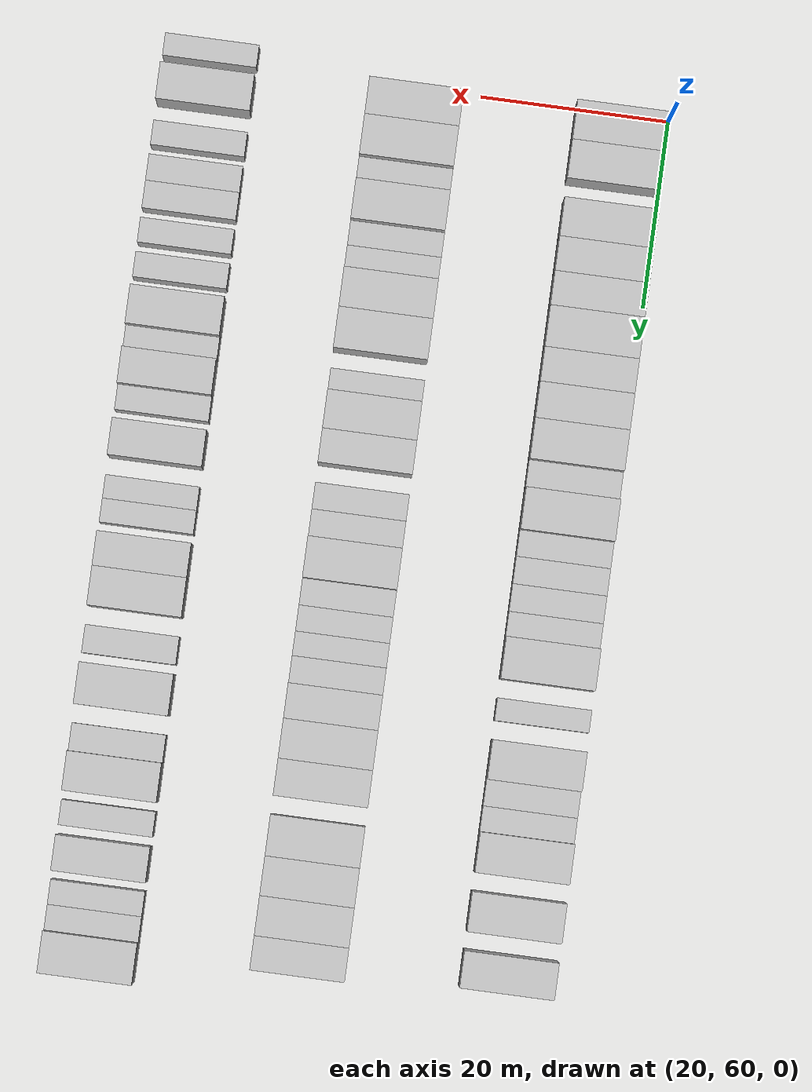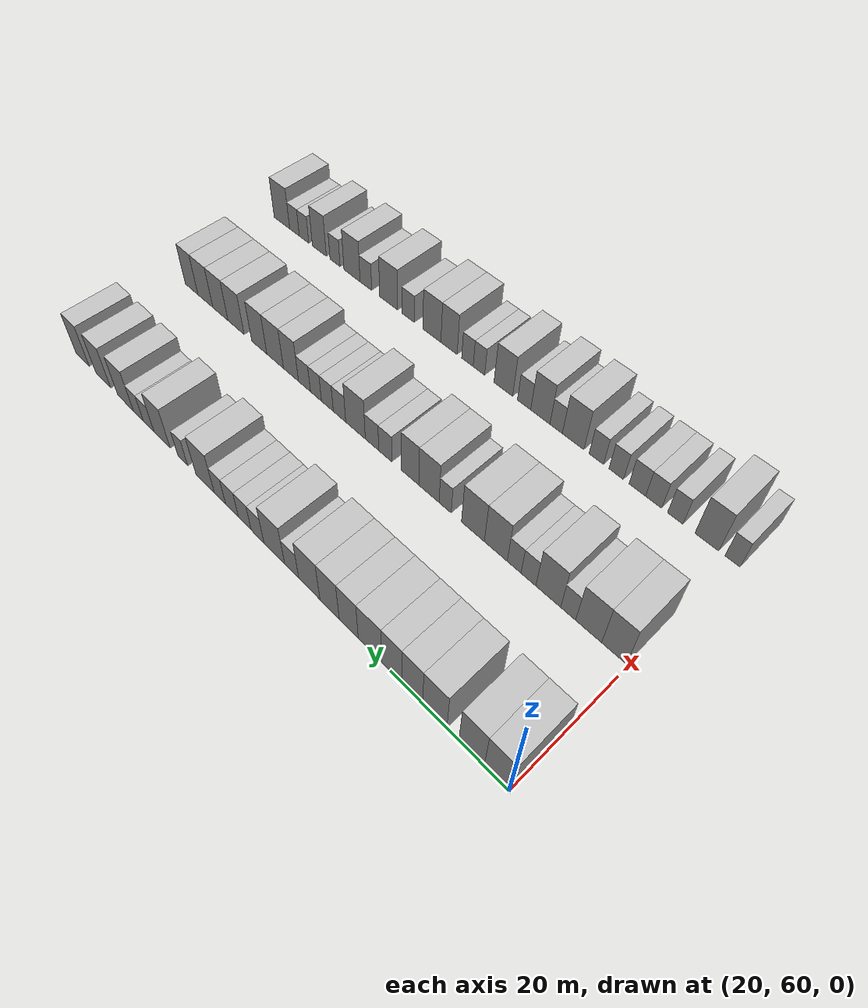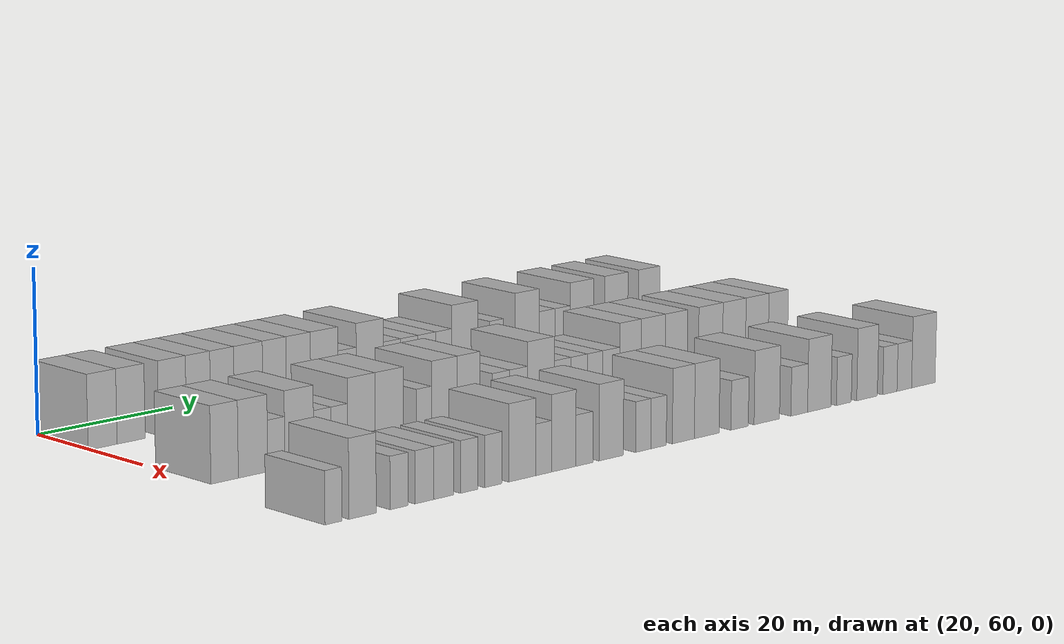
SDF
<sdf version="1.6">
 <world name="default">
  <model name="building_78">
   <static>1</static>
   <pose>25.0000 61.8895 0 0.000000 0.000000 0.000000</pose>
   <link name="link">
    <pose>0 0 4.50 0 0 0</pose>
    <collision name="collision"><geometry><box><size>10.0000 4.2167 9.0000</size></box></geometry></collision>
    <visual name="visual">
     <cast_shadows>0</cast_shadows>
     <geometry><box><size>10.0000 4.2167 9.0000</size></box></geometry>
     <material>
      <script>
       <uri>model://HANNAS_wall/materials/scripts</uri>
       <uri>model://HANNAS_wall/materials/textures</uri>
       <name>vrc/HANNAS_wall</name>
      </script>
     </material>
    </visual>
   </link>
  </model>
  <model name="building_79">
   <static>1</static>
   <pose>25.0000 66.0644 0 0.000000 0.000000 0.000000</pose>
   <link name="link">
    <pose>0 0 4.50 0 0 0</pose>
    <collision name="collision"><geometry><box><size>10.0000 4.1331 9.0000</size></box></geometry></collision>
    <visual name="visual">
     <cast_shadows>0</cast_shadows>
     <geometry><box><size>10.0000 4.1331 9.0000</size></box></geometry>
     <material>
      <script>
       <uri>model://HANNAS_wall/materials/scripts</uri>
       <uri>model://HANNAS_wall/materials/textures</uri>
       <name>vrc/HANNAS_wall</name>
      </script>
     </material>
    </visual>
   </link>
  </model>
  <model name="building_80">
   <static>1</static>
   <pose>25.0000 72.2032 0 0.000000 0.000000 0.000000</pose>
   <link name="link">
    <pose>0 0 4.50 0 0 0</pose>
    <collision name="collision"><geometry><box><size>10.0000 4.1444 9.0000</size></box></geometry></collision>
    <visual name="visual">
     <cast_shadows>0</cast_shadows>
     <geometry><box><size>10.0000 4.1444 9.0000</size></box></geometry>
     <material>
      <script>
       <uri>model://HANNAS_wall/materials/scripts</uri>
       <uri>model://HANNAS_wall/materials/textures</uri>
       <name>vrc/HANNAS_wall</name>
      </script>
     </material>
    </visual>
   </link>
  </model>
  <model name="building_81">
   <static>1</static>
   <pose>25.0000 76.1131 0 0.000000 0.000000 0.000000</pose>
   <link name="link">
    <pose>0 0 4.50 0 0 0</pose>
    <collision name="collision"><geometry><box><size>10.0000 3.6752 9.0000</size></box></geometry></collision>
    <visual name="visual">
     <cast_shadows>0</cast_shadows>
     <geometry><box><size>10.0000 3.6752 9.0000</size></box></geometry>
     <material>
      <script>
       <uri>model://HANNAS_wall/materials/scripts</uri>
       <uri>model://HANNAS_wall/materials/textures</uri>
       <name>vrc/HANNAS_wall</name>
      </script>
     </material>
    </visual>
   </link>
  </model>
  <model name="building_82">
   <static>1</static>
   <pose>25.0000 79.7683 0 0.000000 0.000000 0.000000</pose>
   <link name="link">
    <pose>0 0 4.50 0 0 0</pose>
    <collision name="collision"><geometry><box><size>10.0000 3.6352 9.0000</size></box></geometry></collision>
    <visual name="visual">
     <cast_shadows>0</cast_shadows>
     <geometry><box><size>10.0000 3.6352 9.0000</size></box></geometry>
     <material>
      <script>
       <uri>model://HANNAS_wall/materials/scripts</uri>
       <uri>model://HANNAS_wall/materials/textures</uri>
       <name>vrc/HANNAS_wall</name>
      </script>
     </material>
    </visual>
   </link>
  </model>
  <model name="building_83">
   <static>1</static>
   <pose>25.0000 83.7932 0 0.000000 0.000000 0.000000</pose>
   <link name="link">
    <pose>0 0 4.50 0 0 0</pose>
    <collision name="collision"><geometry><box><size>10.0000 4.4147 9.0000</size></box></geometry></collision>
    <visual name="visual">
     <cast_shadows>0</cast_shadows>
     <geometry><box><size>10.0000 4.4147 9.0000</size></box></geometry>
     <material>
      <script>
       <uri>model://HANNAS_wall/materials/scripts</uri>
       <uri>model://HANNAS_wall/materials/textures</uri>
       <name>vrc/HANNAS_wall</name>
      </script>
     </material>
    </visual>
   </link>
  </model>
  <model name="building_84">
   <static>1</static>
   <pose>25.0000 87.8407 0 0.000000 0.000000 0.000000</pose>
   <link name="link">
    <pose>0 0 4.50 0 0 0</pose>
    <collision name="collision"><geometry><box><size>10.0000 3.6802 9.0000</size></box></geometry></collision>
    <visual name="visual">
     <cast_shadows>0</cast_shadows>
     <geometry><box><size>10.0000 3.6802 9.0000</size></box></geometry>
     <material>
      <script>
       <uri>model://HANNAS_wall/materials/scripts</uri>
       <uri>model://HANNAS_wall/materials/textures</uri>
       <name>vrc/HANNAS_wall</name>
      </script>
     </material>
    </visual>
   </link>
  </model>
  <model name="building_85">
   <static>1</static>
   <pose>25.0000 91.6075 0 0.000000 0.000000 0.000000</pose>
   <link name="link">
    <pose>0 0 4.50 0 0 0</pose>
    <collision name="collision"><geometry><box><size>10.0000 3.8534 9.0000</size></box></geometry></collision>
    <visual name="visual">
     <cast_shadows>0</cast_shadows>
     <geometry><box><size>10.0000 3.8534 9.0000</size></box></geometry>
     <material>
      <script>
       <uri>model://HANNAS_wall/materials/scripts</uri>
       <uri>model://HANNAS_wall/materials/textures</uri>
       <name>vrc/HANNAS_wall</name>
      </script>
     </material>
    </visual>
   </link>
  </model>
  <model name="building_86">
   <static>1</static>
   <pose>25.0000 95.7060 0 0.000000 0.000000 0.000000</pose>
   <link name="link">
    <pose>0 0 4.50 0 0 0</pose>
    <collision name="collision"><geometry><box><size>10.0000 4.3437 9.0000</size></box></geometry></collision>
    <visual name="visual">
     <cast_shadows>0</cast_shadows>
     <geometry><box><size>10.0000 4.3437 9.0000</size></box></geometry>
     <material>
      <script>
       <uri>model://HANNAS_wall/materials/scripts</uri>
       <uri>model://HANNAS_wall/materials/textures</uri>
       <name>vrc/HANNAS_wall</name>
      </script>
     </material>
    </visual>
   </link>
  </model>
  <model name="building_87">
   <static>1</static>
   <pose>25.0000 99.3693 0 0.000000 0.000000 0.000000</pose>
   <link name="link">
    <pose>0 0 3.00 0 0 0</pose>
    <collision name="collision"><geometry><box><size>10.0000 2.9828 6.0000</size></box></geometry></collision>
    <visual name="visual">
     <cast_shadows>0</cast_shadows>
     <geometry><box><size>10.0000 2.9828 6.0000</size></box></geometry>
     <material>
      <script>
       <uri>model://HANNAS_wall/materials/scripts</uri>
       <uri>model://HANNAS_wall/materials/textures</uri>
       <name>vrc/HANNAS_wall</name>
      </script>
     </material>
    </visual>
   </link>
  </model>
  <model name="building_88">
   <static>1</static>
   <pose>25.0000 103.0950 0 0.000000 0.000000 0.000000</pose>
   <link name="link">
    <pose>0 0 4.50 0 0 0</pose>
    <collision name="collision"><geometry><box><size>10.0000 4.4688 9.0000</size></box></geometry></collision>
    <visual name="visual">
     <cast_shadows>0</cast_shadows>
     <geometry><box><size>10.0000 4.4688 9.0000</size></box></geometry>
     <material>
      <script>
       <uri>model://HANNAS_wall/materials/scripts</uri>
       <uri>model://HANNAS_wall/materials/textures</uri>
       <name>vrc/HANNAS_wall</name>
      </script>
     </material>
    </visual>
   </link>
  </model>
  <model name="building_89">
   <static>1</static>
   <pose>25.0000 106.7341 0 0.000000 0.000000 0.000000</pose>
   <link name="link">
    <pose>0 0 3.00 0 0 0</pose>
    <collision name="collision"><geometry><box><size>10.0000 2.8093 6.0000</size></box></geometry></collision>
    <visual name="visual">
     <cast_shadows>0</cast_shadows>
     <geometry><box><size>10.0000 2.8093 6.0000</size></box></geometry>
     <material>
      <script>
       <uri>model://HANNAS_wall/materials/scripts</uri>
       <uri>model://HANNAS_wall/materials/textures</uri>
       <name>vrc/HANNAS_wall</name>
      </script>
     </material>
    </visual>
   </link>
  </model>
  <model name="building_90">
   <static>1</static>
   <pose>25.0000 109.5918 0 0.000000 0.000000 0.000000</pose>
   <link name="link">
    <pose>0 0 3.00 0 0 0</pose>
    <collision name="collision"><geometry><box><size>10.0000 2.9062 6.0000</size></box></geometry></collision>
    <visual name="visual">
     <cast_shadows>0</cast_shadows>
     <geometry><box><size>10.0000 2.9062 6.0000</size></box></geometry>
     <material>
      <script>
       <uri>model://HANNAS_wall/materials/scripts</uri>
       <uri>model://HANNAS_wall/materials/textures</uri>
       <name>vrc/HANNAS_wall</name>
      </script>
     </material>
    </visual>
   </link>
  </model>
  <model name="building_91">
   <static>1</static>
   <pose>25.0000 112.5151 0 0.000000 0.000000 0.000000</pose>
   <link name="link">
    <pose>0 0 3.00 0 0 0</pose>
    <collision name="collision"><geometry><box><size>10.0000 2.9403 6.0000</size></box></geometry></collision>
    <visual name="visual">
     <cast_shadows>0</cast_shadows>
     <geometry><box><size>10.0000 2.9403 6.0000</size></box></geometry>
     <material>
      <script>
       <uri>model://HANNAS_wall/materials/scripts</uri>
       <uri>model://HANNAS_wall/materials/textures</uri>
       <name>vrc/HANNAS_wall</name>
      </script>
     </material>
    </visual>
   </link>
  </model>
  <model name="building_92">
   <static>1</static>
   <pose>25.0000 115.3304 0 0.000000 0.000000 0.000000</pose>
   <link name="link">
    <pose>0 0 3.00 0 0 0</pose>
    <collision name="collision"><geometry><box><size>10.0000 2.6903 6.0000</size></box></geometry></collision>
    <visual name="visual">
     <cast_shadows>0</cast_shadows>
     <geometry><box><size>10.0000 2.6903 6.0000</size></box></geometry>
     <material>
      <script>
       <uri>model://HANNAS_wall/materials/scripts</uri>
       <uri>model://HANNAS_wall/materials/textures</uri>
       <name>vrc/HANNAS_wall</name>
      </script>
     </material>
    </visual>
   </link>
  </model>
  <model name="building_93">
   <static>1</static>
   <pose>25.0000 118.9179 0 0.000000 0.000000 0.000000</pose>
   <link name="link">
    <pose>0 0 4.50 0 0 0</pose>
    <collision name="collision"><geometry><box><size>10.0000 4.4847 9.0000</size></box></geometry></collision>
    <visual name="visual">
     <cast_shadows>0</cast_shadows>
     <geometry><box><size>10.0000 4.4847 9.0000</size></box></geometry>
     <material>
      <script>
       <uri>model://HANNAS_wall/materials/scripts</uri>
       <uri>model://HANNAS_wall/materials/textures</uri>
       <name>vrc/HANNAS_wall</name>
      </script>
     </material>
    </visual>
   </link>
  </model>
  <model name="building_94">
   <static>1</static>
   <pose>25.0000 124.3690 0 0.000000 0.000000 0.000000</pose>
   <link name="link">
    <pose>0 0 3.00 0 0 0</pose>
    <collision name="collision"><geometry><box><size>10.0000 2.4174 6.0000</size></box></geometry></collision>
    <visual name="visual">
     <cast_shadows>0</cast_shadows>
     <geometry><box><size>10.0000 2.4174 6.0000</size></box></geometry>
     <material>
      <script>
       <uri>model://HANNAS_wall/materials/scripts</uri>
       <uri>model://HANNAS_wall/materials/textures</uri>
       <name>vrc/HANNAS_wall</name>
      </script>
     </material>
    </visual>
   </link>
  </model>
  <model name="building_95">
   <static>1</static>
   <pose>25.0000 129.6791 0 0.000000 0.000000 0.000000</pose>
   <link name="link">
    <pose>0 0 4.50 0 0 0</pose>
    <collision name="collision"><geometry><box><size>10.0000 4.2029 9.0000</size></box></geometry></collision>
    <visual name="visual">
     <cast_shadows>0</cast_shadows>
     <geometry><box><size>10.0000 4.2029 9.0000</size></box></geometry>
     <material>
      <script>
       <uri>model://HANNAS_wall/materials/scripts</uri>
       <uri>model://HANNAS_wall/materials/textures</uri>
       <name>vrc/HANNAS_wall</name>
      </script>
     </material>
    </visual>
   </link>
  </model>
  <model name="building_96">
   <static>1</static>
   <pose>25.0000 133.1959 0 0.000000 0.000000 0.000000</pose>
   <link name="link">
    <pose>0 0 3.00 0 0 0</pose>
    <collision name="collision"><geometry><box><size>10.0000 2.8306 6.0000</size></box></geometry></collision>
    <visual name="visual">
     <cast_shadows>0</cast_shadows>
     <geometry><box><size>10.0000 2.8306 6.0000</size></box></geometry>
     <material>
      <script>
       <uri>model://HANNAS_wall/materials/scripts</uri>
       <uri>model://HANNAS_wall/materials/textures</uri>
       <name>vrc/HANNAS_wall</name>
      </script>
     </material>
    </visual>
   </link>
  </model>
  <model name="building_97">
   <static>1</static>
   <pose>25.0000 135.9650 0 0.000000 0.000000 0.000000</pose>
   <link name="link">
    <pose>0 0 3.00 0 0 0</pose>
    <collision name="collision"><geometry><box><size>10.0000 2.7077 6.0000</size></box></geometry></collision>
    <visual name="visual">
     <cast_shadows>0</cast_shadows>
     <geometry><box><size>10.0000 2.7077 6.0000</size></box></geometry>
     <material>
      <script>
       <uri>model://HANNAS_wall/materials/scripts</uri>
       <uri>model://HANNAS_wall/materials/textures</uri>
       <name>vrc/HANNAS_wall</name>
      </script>
     </material>
    </visual>
   </link>
  </model>
  <model name="building_98">
   <static>1</static>
   <pose>25.0000 139.4616 0 0.000000 0.000000 0.000000</pose>
   <link name="link">
    <pose>0 0 4.50 0 0 0</pose>
    <collision name="collision"><geometry><box><size>10.0000 4.2854 9.0000</size></box></geometry></collision>
    <visual name="visual">
     <cast_shadows>0</cast_shadows>
     <geometry><box><size>10.0000 4.2854 9.0000</size></box></geometry>
     <material>
      <script>
       <uri>model://HANNAS_wall/materials/scripts</uri>
       <uri>model://HANNAS_wall/materials/textures</uri>
       <name>vrc/HANNAS_wall</name>
      </script>
     </material>
    </visual>
   </link>
  </model>
  <model name="building_99">
   <static>1</static>
   <pose>25.0000 145.7187 0 0.000000 0.000000 0.000000</pose>
   <link name="link">
    <pose>0 0 4.50 0 0 0</pose>
    <collision name="collision"><geometry><box><size>10.0000 4.2287 9.0000</size></box></geometry></collision>
    <visual name="visual">
     <cast_shadows>0</cast_shadows>
     <geometry><box><size>10.0000 4.2287 9.0000</size></box></geometry>
     <material>
      <script>
       <uri>model://HANNAS_wall/materials/scripts</uri>
       <uri>model://HANNAS_wall/materials/textures</uri>
       <name>vrc/HANNAS_wall</name>
      </script>
     </material>
    </visual>
   </link>
  </model>
  <model name="building_100">
   <static>1</static>
   <pose>25.0000 151.8026 0 0.000000 0.000000 0.000000</pose>
   <link name="link">
    <pose>0 0 4.50 0 0 0</pose>
    <collision name="collision"><geometry><box><size>10.0000 3.9392 9.0000</size></box></geometry></collision>
    <visual name="visual">
     <cast_shadows>0</cast_shadows>
     <geometry><box><size>10.0000 3.9392 9.0000</size></box></geometry>
     <material>
      <script>
       <uri>model://HANNAS_wall/materials/scripts</uri>
       <uri>model://HANNAS_wall/materials/textures</uri>
       <name>vrc/HANNAS_wall</name>
      </script>
     </material>
    </visual>
   </link>
  </model>
  <model name="building_196">
   <static>1</static>
   <pose>47.0000 62.2658 0 0.000000 0.000000 0.000000</pose>
   <link name="link">
    <pose>0 0 4.50 0 0 0</pose>
    <collision name="collision"><geometry><box><size>10.0000 3.9553 9.0000</size></box></geometry></collision>
    <visual name="visual">
     <cast_shadows>0</cast_shadows>
     <geometry><box><size>10.0000 3.9553 9.0000</size></box></geometry>
     <material>
      <script>
       <uri>model://HANNAS_wall/materials/scripts</uri>
       <uri>model://HANNAS_wall/materials/textures</uri>
       <name>vrc/HANNAS_wall</name>
      </script>
     </material>
    </visual>
   </link>
  </model>
  <model name="building_197">
   <static>1</static>
   <pose>47.0000 66.3854 0 0.000000 0.000000 0.000000</pose>
   <link name="link">
    <pose>0 0 4.50 0 0 0</pose>
    <collision name="collision"><geometry><box><size>10.0000 4.2839 9.0000</size></box></geometry></collision>
    <visual name="visual">
     <cast_shadows>0</cast_shadows>
     <geometry><box><size>10.0000 4.2839 9.0000</size></box></geometry>
     <material>
      <script>
       <uri>model://HANNAS_wall/materials/scripts</uri>
       <uri>model://HANNAS_wall/materials/textures</uri>
       <name>vrc/HANNAS_wall</name>
      </script>
     </material>
    </visual>
   </link>
  </model>
  <model name="building_198">
   <static>1</static>
   <pose>47.0000 69.7867 0 0.000000 0.000000 0.000000</pose>
   <link name="link">
    <pose>0 0 3.00 0 0 0</pose>
    <collision name="collision"><geometry><box><size>10.0000 2.5188 6.0000</size></box></geometry></collision>
    <visual name="visual">
     <cast_shadows>0</cast_shadows>
     <geometry><box><size>10.0000 2.5188 6.0000</size></box></geometry>
     <material>
      <script>
       <uri>model://HANNAS_wall/materials/scripts</uri>
       <uri>model://HANNAS_wall/materials/textures</uri>
       <name>vrc/HANNAS_wall</name>
      </script>
     </material>
    </visual>
   </link>
  </model>
  <model name="building_199">
   <static>1</static>
   <pose>47.0000 73.1935 0 0.000000 0.000000 0.000000</pose>
   <link name="link">
    <pose>0 0 4.50 0 0 0</pose>
    <collision name="collision"><geometry><box><size>10.0000 4.2947 9.0000</size></box></geometry></collision>
    <visual name="visual">
     <cast_shadows>0</cast_shadows>
     <geometry><box><size>10.0000 4.2947 9.0000</size></box></geometry>
     <material>
      <script>
       <uri>model://HANNAS_wall/materials/scripts</uri>
       <uri>model://HANNAS_wall/materials/textures</uri>
       <name>vrc/HANNAS_wall</name>
      </script>
     </material>
    </visual>
   </link>
  </model>
  <model name="building_200">
   <static>1</static>
   <pose>47.0000 76.6551 0 0.000000 0.000000 0.000000</pose>
   <link name="link">
    <pose>0 0 3.00 0 0 0</pose>
    <collision name="collision"><geometry><box><size>10.0000 2.6286 6.0000</size></box></geometry></collision>
    <visual name="visual">
     <cast_shadows>0</cast_shadows>
     <geometry><box><size>10.0000 2.6286 6.0000</size></box></geometry>
     <material>
      <script>
       <uri>model://HANNAS_wall/materials/scripts</uri>
       <uri>model://HANNAS_wall/materials/textures</uri>
       <name>vrc/HANNAS_wall</name>
      </script>
     </material>
    </visual>
   </link>
  </model>
  <model name="building_201">
   <static>1</static>
   <pose>47.0000 79.2165 0 0.000000 0.000000 0.000000</pose>
   <link name="link">
    <pose>0 0 3.00 0 0 0</pose>
    <collision name="collision"><geometry><box><size>10.0000 2.4942 6.0000</size></box></geometry></collision>
    <visual name="visual">
     <cast_shadows>0</cast_shadows>
     <geometry><box><size>10.0000 2.4942 6.0000</size></box></geometry>
     <material>
      <script>
       <uri>model://HANNAS_wall/materials/scripts</uri>
       <uri>model://HANNAS_wall/materials/textures</uri>
       <name>vrc/HANNAS_wall</name>
      </script>
     </material>
    </visual>
   </link>
  </model>
  <model name="building_202">
   <static>1</static>
   <pose>47.0000 82.5795 0 0.000000 0.000000 0.000000</pose>
   <link name="link">
    <pose>0 0 4.50 0 0 0</pose>
    <collision name="collision"><geometry><box><size>10.0000 4.2317 9.0000</size></box></geometry></collision>
    <visual name="visual">
     <cast_shadows>0</cast_shadows>
     <geometry><box><size>10.0000 4.2317 9.0000</size></box></geometry>
     <material>
      <script>
       <uri>model://HANNAS_wall/materials/scripts</uri>
       <uri>model://HANNAS_wall/materials/textures</uri>
       <name>vrc/HANNAS_wall</name>
      </script>
     </material>
    </visual>
   </link>
  </model>
  <model name="building_203">
   <static>1</static>
   <pose>47.0000 86.8786 0 0.000000 0.000000 0.000000</pose>
   <link name="link">
    <pose>0 0 4.50 0 0 0</pose>
    <collision name="collision"><geometry><box><size>10.0000 4.3666 9.0000</size></box></geometry></collision>
    <visual name="visual">
     <cast_shadows>0</cast_shadows>
     <geometry><box><size>10.0000 4.3666 9.0000</size></box></geometry>
     <material>
      <script>
       <uri>model://HANNAS_wall/materials/scripts</uri>
       <uri>model://HANNAS_wall/materials/textures</uri>
       <name>vrc/HANNAS_wall</name>
      </script>
     </material>
    </visual>
   </link>
  </model>
  <model name="building_204">
   <static>1</static>
   <pose>47.0000 92.2637 0 0.000000 0.000000 0.000000</pose>
   <link name="link">
    <pose>0 0 3.00 0 0 0</pose>
    <collision name="collision"><geometry><box><size>10.0000 2.4036 6.0000</size></box></geometry></collision>
    <visual name="visual">
     <cast_shadows>0</cast_shadows>
     <geometry><box><size>10.0000 2.4036 6.0000</size></box></geometry>
     <material>
      <script>
       <uri>model://HANNAS_wall/materials/scripts</uri>
       <uri>model://HANNAS_wall/materials/textures</uri>
       <name>vrc/HANNAS_wall</name>
      </script>
     </material>
    </visual>
   </link>
  </model>
  <model name="building_205">
   <static>1</static>
   <pose>47.0000 95.5250 0 0.000000 0.000000 0.000000</pose>
   <link name="link">
    <pose>0 0 4.50 0 0 0</pose>
    <collision name="collision"><geometry><box><size>10.0000 4.1190 9.0000</size></box></geometry></collision>
    <visual name="visual">
     <cast_shadows>0</cast_shadows>
     <geometry><box><size>10.0000 4.1190 9.0000</size></box></geometry>
     <material>
      <script>
       <uri>model://HANNAS_wall/materials/scripts</uri>
       <uri>model://HANNAS_wall/materials/textures</uri>
       <name>vrc/HANNAS_wall</name>
      </script>
     </material>
    </visual>
   </link>
  </model>
  <model name="building_206">
   <static>1</static>
   <pose>47.0000 99.3985 0 0.000000 0.000000 0.000000</pose>
   <link name="link">
    <pose>0 0 4.50 0 0 0</pose>
    <collision name="collision"><geometry><box><size>10.0000 3.6279 9.0000</size></box></geometry></collision>
    <visual name="visual">
     <cast_shadows>0</cast_shadows>
     <geometry><box><size>10.0000 3.6279 9.0000</size></box></geometry>
     <material>
      <script>
       <uri>model://HANNAS_wall/materials/scripts</uri>
       <uri>model://HANNAS_wall/materials/textures</uri>
       <name>vrc/HANNAS_wall</name>
      </script>
     </material>
    </visual>
   </link>
  </model>
  <model name="building_207">
   <static>1</static>
   <pose>47.0000 104.6295 0 0.000000 0.000000 0.000000</pose>
   <link name="link">
    <pose>0 0 3.00 0 0 0</pose>
    <collision name="collision"><geometry><box><size>10.0000 2.8340 6.0000</size></box></geometry></collision>
    <visual name="visual">
     <cast_shadows>0</cast_shadows>
     <geometry><box><size>10.0000 2.8340 6.0000</size></box></geometry>
     <material>
      <script>
       <uri>model://HANNAS_wall/materials/scripts</uri>
       <uri>model://HANNAS_wall/materials/textures</uri>
       <name>vrc/HANNAS_wall</name>
      </script>
     </material>
    </visual>
   </link>
  </model>
  <model name="building_208">
   <static>1</static>
   <pose>47.0000 107.5206 0 0.000000 0.000000 0.000000</pose>
   <link name="link">
    <pose>0 0 3.00 0 0 0</pose>
    <collision name="collision"><geometry><box><size>10.0000 2.9482 6.0000</size></box></geometry></collision>
    <visual name="visual">
     <cast_shadows>0</cast_shadows>
     <geometry><box><size>10.0000 2.9482 6.0000</size></box></geometry>
     <material>
      <script>
       <uri>model://HANNAS_wall/materials/scripts</uri>
       <uri>model://HANNAS_wall/materials/textures</uri>
       <name>vrc/HANNAS_wall</name>
      </script>
     </material>
    </visual>
   </link>
  </model>
  <model name="building_209">
   <static>1</static>
   <pose>47.0000 111.1932 0 0.000000 0.000000 0.000000</pose>
   <link name="link">
    <pose>0 0 4.50 0 0 0</pose>
    <collision name="collision"><geometry><box><size>10.0000 4.3971 9.0000</size></box></geometry></collision>
    <visual name="visual">
     <cast_shadows>0</cast_shadows>
     <geometry><box><size>10.0000 4.3971 9.0000</size></box></geometry>
     <material>
      <script>
       <uri>model://HANNAS_wall/materials/scripts</uri>
       <uri>model://HANNAS_wall/materials/textures</uri>
       <name>vrc/HANNAS_wall</name>
      </script>
     </material>
    </visual>
   </link>
  </model>
  <model name="building_210">
   <static>1</static>
   <pose>47.0000 114.8200 0 0.000000 0.000000 0.000000</pose>
   <link name="link">
    <pose>0 0 3.00 0 0 0</pose>
    <collision name="collision"><geometry><box><size>10.0000 2.8565 6.0000</size></box></geometry></collision>
    <visual name="visual">
     <cast_shadows>0</cast_shadows>
     <geometry><box><size>10.0000 2.8565 6.0000</size></box></geometry>
     <material>
      <script>
       <uri>model://HANNAS_wall/materials/scripts</uri>
       <uri>model://HANNAS_wall/materials/textures</uri>
       <name>vrc/HANNAS_wall</name>
      </script>
     </material>
    </visual>
   </link>
  </model>
  <model name="building_211">
   <static>1</static>
   <pose>47.0000 117.6326 0 0.000000 0.000000 0.000000</pose>
   <link name="link">
    <pose>0 0 3.00 0 0 0</pose>
    <collision name="collision"><geometry><box><size>10.0000 2.7687 6.0000</size></box></geometry></collision>
    <visual name="visual">
     <cast_shadows>0</cast_shadows>
     <geometry><box><size>10.0000 2.7687 6.0000</size></box></geometry>
     <material>
      <script>
       <uri>model://HANNAS_wall/materials/scripts</uri>
       <uri>model://HANNAS_wall/materials/textures</uri>
       <name>vrc/HANNAS_wall</name>
      </script>
     </material>
    </visual>
   </link>
  </model>
  <model name="building_212">
   <static>1</static>
   <pose>47.0000 120.3211 0 0.000000 0.000000 0.000000</pose>
   <link name="link">
    <pose>0 0 3.00 0 0 0</pose>
    <collision name="collision"><geometry><box><size>10.0000 2.6082 6.0000</size></box></geometry></collision>
    <visual name="visual">
     <cast_shadows>0</cast_shadows>
     <geometry><box><size>10.0000 2.6082 6.0000</size></box></geometry>
     <material>
      <script>
       <uri>model://HANNAS_wall/materials/scripts</uri>
       <uri>model://HANNAS_wall/materials/textures</uri>
       <name>vrc/HANNAS_wall</name>
      </script>
     </material>
    </visual>
   </link>
  </model>
  <model name="building_213">
   <static>1</static>
   <pose>47.0000 123.0768 0 0.000000 0.000000 0.000000</pose>
   <link name="link">
    <pose>0 0 3.00 0 0 0</pose>
    <collision name="collision"><geometry><box><size>10.0000 2.9032 6.0000</size></box></geometry></collision>
    <visual name="visual">
     <cast_shadows>0</cast_shadows>
     <geometry><box><size>10.0000 2.9032 6.0000</size></box></geometry>
     <material>
      <script>
       <uri>model://HANNAS_wall/materials/scripts</uri>
       <uri>model://HANNAS_wall/materials/textures</uri>
       <name>vrc/HANNAS_wall</name>
      </script>
     </material>
    </visual>
   </link>
  </model>
  <model name="building_214">
   <static>1</static>
   <pose>47.0000 126.3948 0 0.000000 0.000000 0.000000</pose>
   <link name="link">
    <pose>0 0 4.50 0 0 0</pose>
    <collision name="collision"><geometry><box><size>10.0000 3.7327 9.0000</size></box></geometry></collision>
    <visual name="visual">
     <cast_shadows>0</cast_shadows>
     <geometry><box><size>10.0000 3.7327 9.0000</size></box></geometry>
     <material>
      <script>
       <uri>model://HANNAS_wall/materials/scripts</uri>
       <uri>model://HANNAS_wall/materials/textures</uri>
       <name>vrc/HANNAS_wall</name>
      </script>
     </material>
    </visual>
   </link>
  </model>
  <model name="building_215">
   <static>1</static>
   <pose>47.0000 130.3726 0 0.000000 0.000000 0.000000</pose>
   <link name="link">
    <pose>0 0 4.50 0 0 0</pose>
    <collision name="collision"><geometry><box><size>10.0000 4.2229 9.0000</size></box></geometry></collision>
    <visual name="visual">
     <cast_shadows>0</cast_shadows>
     <geometry><box><size>10.0000 4.2229 9.0000</size></box></geometry>
     <material>
      <script>
       <uri>model://HANNAS_wall/materials/scripts</uri>
       <uri>model://HANNAS_wall/materials/textures</uri>
       <name>vrc/HANNAS_wall</name>
      </script>
     </material>
    </visual>
   </link>
  </model>
  <model name="building_216">
   <static>1</static>
   <pose>47.0000 134.4536 0 0.000000 0.000000 0.000000</pose>
   <link name="link">
    <pose>0 0 4.50 0 0 0</pose>
    <collision name="collision"><geometry><box><size>10.0000 3.9391 9.0000</size></box></geometry></collision>
    <visual name="visual">
     <cast_shadows>0</cast_shadows>
     <geometry><box><size>10.0000 3.9391 9.0000</size></box></geometry>
     <material>
      <script>
       <uri>model://HANNAS_wall/materials/scripts</uri>
       <uri>model://HANNAS_wall/materials/textures</uri>
       <name>vrc/HANNAS_wall</name>
      </script>
     </material>
    </visual>
   </link>
  </model>
  <model name="building_217">
   <static>1</static>
   <pose>47.0000 140.6052 0 0.000000 0.000000 0.000000</pose>
   <link name="link">
    <pose>0 0 4.50 0 0 0</pose>
    <collision name="collision"><geometry><box><size>10.0000 4.3642 9.0000</size></box></geometry></collision>
    <visual name="visual">
     <cast_shadows>0</cast_shadows>
     <geometry><box><size>10.0000 4.3642 9.0000</size></box></geometry>
     <material>
      <script>
       <uri>model://HANNAS_wall/materials/scripts</uri>
       <uri>model://HANNAS_wall/materials/textures</uri>
       <name>vrc/HANNAS_wall</name>
      </script>
     </material>
    </visual>
   </link>
  </model>
  <model name="building_218">
   <static>1</static>
   <pose>47.0000 144.8813 0 0.000000 0.000000 0.000000</pose>
   <link name="link">
    <pose>0 0 4.50 0 0 0</pose>
    <collision name="collision"><geometry><box><size>10.0000 4.1880 9.0000</size></box></geometry></collision>
    <visual name="visual">
     <cast_shadows>0</cast_shadows>
     <geometry><box><size>10.0000 4.1880 9.0000</size></box></geometry>
     <material>
      <script>
       <uri>model://HANNAS_wall/materials/scripts</uri>
       <uri>model://HANNAS_wall/materials/textures</uri>
       <name>vrc/HANNAS_wall</name>
      </script>
     </material>
    </visual>
   </link>
  </model>
  <model name="building_219">
   <static>1</static>
   <pose>47.0000 149.0833 0 0.000000 0.000000 0.000000</pose>
   <link name="link">
    <pose>0 0 4.50 0 0 0</pose>
    <collision name="collision"><geometry><box><size>10.0000 4.2160 9.0000</size></box></geometry></collision>
    <visual name="visual">
     <cast_shadows>0</cast_shadows>
     <geometry><box><size>10.0000 4.2160 9.0000</size></box></geometry>
     <material>
      <script>
       <uri>model://HANNAS_wall/materials/scripts</uri>
       <uri>model://HANNAS_wall/materials/textures</uri>
       <name>vrc/HANNAS_wall</name>
      </script>
     </material>
    </visual>
   </link>
  </model>
  <model name="building_220">
   <static>1</static>
   <pose>47.0000 153.0043 0 0.000000 0.000000 0.000000</pose>
   <link name="link">
    <pose>0 0 4.50 0 0 0</pose>
    <collision name="collision"><geometry><box><size>10.0000 3.6261 9.0000</size></box></geometry></collision>
    <visual name="visual">
     <cast_shadows>0</cast_shadows>
     <geometry><box><size>10.0000 3.6261 9.0000</size></box></geometry>
     <material>
      <script>
       <uri>model://HANNAS_wall/materials/scripts</uri>
       <uri>model://HANNAS_wall/materials/textures</uri>
       <name>vrc/HANNAS_wall</name>
      </script>
     </material>
    </visual>
   </link>
  </model>
  <model name="building_317">
   <static>1</static>
   <pose>69.0000 59.4652 0 0.000000 0.000000 0.000000</pose>
   <link name="link">
    <pose>0 0 3.00 0 0 0</pose>
    <collision name="collision"><geometry><box><size>10.0000 2.4046 6.0000</size></box></geometry></collision>
    <visual name="visual">
     <cast_shadows>0</cast_shadows>
     <geometry><box><size>10.0000 2.4046 6.0000</size></box></geometry>
     <material>
      <script>
       <uri>model://HANNAS_wall/materials/scripts</uri>
       <uri>model://HANNAS_wall/materials/textures</uri>
       <name>vrc/HANNAS_wall</name>
      </script>
     </material>
    </visual>
   </link>
  </model>
  <model name="building_318">
   <static>1</static>
   <pose>69.0000 63.6220 0 0.000000 0.000000 0.000000</pose>
   <link name="link">
    <pose>0 0 4.50 0 0 0</pose>
    <collision name="collision"><geometry><box><size>10.0000 3.9090 9.0000</size></box></geometry></collision>
    <visual name="visual">
     <cast_shadows>0</cast_shadows>
     <geometry><box><size>10.0000 3.9090 9.0000</size></box></geometry>
     <material>
      <script>
       <uri>model://HANNAS_wall/materials/scripts</uri>
       <uri>model://HANNAS_wall/materials/textures</uri>
       <name>vrc/HANNAS_wall</name>
      </script>
     </material>
    </visual>
   </link>
  </model>
  <model name="building_319">
   <static>1</static>
   <pose>69.0000 68.8863 0 0.000000 0.000000 0.000000</pose>
   <link name="link">
    <pose>0 0 3.00 0 0 0</pose>
    <collision name="collision"><geometry><box><size>10.0000 2.6196 6.0000</size></box></geometry></collision>
    <visual name="visual">
     <cast_shadows>0</cast_shadows>
     <geometry><box><size>10.0000 2.6196 6.0000</size></box></geometry>
     <material>
      <script>
       <uri>model://HANNAS_wall/materials/scripts</uri>
       <uri>model://HANNAS_wall/materials/textures</uri>
       <name>vrc/HANNAS_wall</name>
      </script>
     </material>
    </visual>
   </link>
  </model>
  <model name="building_320">
   <static>1</static>
   <pose>69.0000 72.6006 0 0.000000 0.000000 0.000000</pose>
   <link name="link">
    <pose>0 0 3.00 0 0 0</pose>
    <collision name="collision"><geometry><box><size>10.0000 2.8090 6.0000</size></box></geometry></collision>
    <visual name="visual">
     <cast_shadows>0</cast_shadows>
     <geometry><box><size>10.0000 2.8090 6.0000</size></box></geometry>
     <material>
      <script>
       <uri>model://HANNAS_wall/materials/scripts</uri>
       <uri>model://HANNAS_wall/materials/textures</uri>
       <name>vrc/HANNAS_wall</name>
      </script>
     </material>
    </visual>
   </link>
  </model>
  <model name="building_321">
   <static>1</static>
   <pose>69.0000 75.4771 0 0.000000 0.000000 0.000000</pose>
   <link name="link">
    <pose>0 0 3.00 0 0 0</pose>
    <collision name="collision"><geometry><box><size>10.0000 2.9439 6.0000</size></box></geometry></collision>
    <visual name="visual">
     <cast_shadows>0</cast_shadows>
     <geometry><box><size>10.0000 2.9439 6.0000</size></box></geometry>
     <material>
      <script>
       <uri>model://HANNAS_wall/materials/scripts</uri>
       <uri>model://HANNAS_wall/materials/textures</uri>
       <name>vrc/HANNAS_wall</name>
      </script>
     </material>
    </visual>
   </link>
  </model>
  <model name="building_322">
   <static>1</static>
   <pose>69.0000 79.2718 0 0.000000 0.000000 0.000000</pose>
   <link name="link">
    <pose>0 0 3.00 0 0 0</pose>
    <collision name="collision"><geometry><box><size>10.0000 2.6455 6.0000</size></box></geometry></collision>
    <visual name="visual">
     <cast_shadows>0</cast_shadows>
     <geometry><box><size>10.0000 2.6455 6.0000</size></box></geometry>
     <material>
      <script>
       <uri>model://HANNAS_wall/materials/scripts</uri>
       <uri>model://HANNAS_wall/materials/textures</uri>
       <name>vrc/HANNAS_wall</name>
      </script>
     </material>
    </visual>
   </link>
  </model>
  <model name="building_323">
   <static>1</static>
   <pose>69.0000 82.9396 0 0.000000 0.000000 0.000000</pose>
   <link name="link">
    <pose>0 0 3.00 0 0 0</pose>
    <collision name="collision"><geometry><box><size>10.0000 2.6900 6.0000</size></box></geometry></collision>
    <visual name="visual">
     <cast_shadows>0</cast_shadows>
     <geometry><box><size>10.0000 2.6900 6.0000</size></box></geometry>
     <material>
      <script>
       <uri>model://HANNAS_wall/materials/scripts</uri>
       <uri>model://HANNAS_wall/materials/textures</uri>
       <name>vrc/HANNAS_wall</name>
      </script>
     </material>
    </visual>
   </link>
  </model>
  <model name="building_324">
   <static>1</static>
   <pose>69.0000 87.3543 0 0.000000 0.000000 0.000000</pose>
   <link name="link">
    <pose>0 0 4.50 0 0 0</pose>
    <collision name="collision"><geometry><box><size>10.0000 4.1395 9.0000</size></box></geometry></collision>
    <visual name="visual">
     <cast_shadows>0</cast_shadows>
     <geometry><box><size>10.0000 4.1395 9.0000</size></box></geometry>
     <material>
      <script>
       <uri>model://HANNAS_wall/materials/scripts</uri>
       <uri>model://HANNAS_wall/materials/textures</uri>
       <name>vrc/HANNAS_wall</name>
      </script>
     </material>
    </visual>
   </link>
  </model>
  <model name="building_325">
   <static>1</static>
   <pose>69.0000 90.6476 0 0.000000 0.000000 0.000000</pose>
   <link name="link">
    <pose>0 0 3.00 0 0 0</pose>
    <collision name="collision"><geometry><box><size>10.0000 2.4471 6.0000</size></box></geometry></collision>
    <visual name="visual">
     <cast_shadows>0</cast_shadows>
     <geometry><box><size>10.0000 2.4471 6.0000</size></box></geometry>
     <material>
      <script>
       <uri>model://HANNAS_wall/materials/scripts</uri>
       <uri>model://HANNAS_wall/materials/textures</uri>
       <name>vrc/HANNAS_wall</name>
      </script>
     </material>
    </visual>
   </link>
  </model>
  <model name="building_326">
   <static>1</static>
   <pose>69.0000 93.8006 0 0.000000 0.000000 0.000000</pose>
   <link name="link">
    <pose>0 0 4.50 0 0 0</pose>
    <collision name="collision"><geometry><box><size>10.0000 3.8588 9.0000</size></box></geometry></collision>
    <visual name="visual">
     <cast_shadows>0</cast_shadows>
     <geometry><box><size>10.0000 3.8588 9.0000</size></box></geometry>
     <material>
      <script>
       <uri>model://HANNAS_wall/materials/scripts</uri>
       <uri>model://HANNAS_wall/materials/textures</uri>
       <name>vrc/HANNAS_wall</name>
      </script>
     </material>
    </visual>
   </link>
  </model>
  <model name="building_327">
   <static>1</static>
   <pose>69.0000 97.0748 0 0.000000 0.000000 0.000000</pose>
   <link name="link">
    <pose>0 0 3.00 0 0 0</pose>
    <collision name="collision"><geometry><box><size>10.0000 2.6896 6.0000</size></box></geometry></collision>
    <visual name="visual">
     <cast_shadows>0</cast_shadows>
     <geometry><box><size>10.0000 2.6896 6.0000</size></box></geometry>
     <material>
      <script>
       <uri>model://HANNAS_wall/materials/scripts</uri>
       <uri>model://HANNAS_wall/materials/textures</uri>
       <name>vrc/HANNAS_wall</name>
      </script>
     </material>
    </visual>
   </link>
  </model>
  <model name="building_328">
   <static>1</static>
   <pose>69.0000 101.3848 0 0.000000 0.000000 0.000000</pose>
   <link name="link">
    <pose>0 0 4.50 0 0 0</pose>
    <collision name="collision"><geometry><box><size>10.0000 3.9304 9.0000</size></box></geometry></collision>
    <visual name="visual">
     <cast_shadows>0</cast_shadows>
     <geometry><box><size>10.0000 3.9304 9.0000</size></box></geometry>
     <material>
      <script>
       <uri>model://HANNAS_wall/materials/scripts</uri>
       <uri>model://HANNAS_wall/materials/textures</uri>
       <name>vrc/HANNAS_wall</name>
      </script>
     </material>
    </visual>
   </link>
  </model>
  <model name="building_329">
   <static>1</static>
   <pose>69.0000 106.5987 0 0.000000 0.000000 0.000000</pose>
   <link name="link">
    <pose>0 0 3.00 0 0 0</pose>
    <collision name="collision"><geometry><box><size>10.0000 2.4974 6.0000</size></box></geometry></collision>
    <visual name="visual">
     <cast_shadows>0</cast_shadows>
     <geometry><box><size>10.0000 2.4974 6.0000</size></box></geometry>
     <material>
      <script>
       <uri>model://HANNAS_wall/materials/scripts</uri>
       <uri>model://HANNAS_wall/materials/textures</uri>
       <name>vrc/HANNAS_wall</name>
      </script>
     </material>
    </visual>
   </link>
  </model>
  <model name="building_330">
   <static>1</static>
   <pose>69.0000 109.1195 0 0.000000 0.000000 0.000000</pose>
   <link name="link">
    <pose>0 0 3.00 0 0 0</pose>
    <collision name="collision"><geometry><box><size>10.0000 2.5442 6.0000</size></box></geometry></collision>
    <visual name="visual">
     <cast_shadows>0</cast_shadows>
     <geometry><box><size>10.0000 2.5442 6.0000</size></box></geometry>
     <material>
      <script>
       <uri>model://HANNAS_wall/materials/scripts</uri>
       <uri>model://HANNAS_wall/materials/textures</uri>
       <name>vrc/HANNAS_wall</name>
      </script>
     </material>
    </visual>
   </link>
  </model>
  <model name="building_331">
   <static>1</static>
   <pose>69.0000 113.2311 0 0.000000 0.000000 0.000000</pose>
   <link name="link">
    <pose>0 0 4.50 0 0 0</pose>
    <collision name="collision"><geometry><box><size>10.0000 3.6788 9.0000</size></box></geometry></collision>
    <visual name="visual">
     <cast_shadows>0</cast_shadows>
     <geometry><box><size>10.0000 3.6788 9.0000</size></box></geometry>
     <material>
      <script>
       <uri>model://HANNAS_wall/materials/scripts</uri>
       <uri>model://HANNAS_wall/materials/textures</uri>
       <name>vrc/HANNAS_wall</name>
      </script>
     </material>
    </visual>
   </link>
  </model>
  <model name="building_332">
   <static>1</static>
   <pose>69.0000 117.1670 0 0.000000 0.000000 0.000000</pose>
   <link name="link">
    <pose>0 0 4.50 0 0 0</pose>
    <collision name="collision"><geometry><box><size>10.0000 4.1931 9.0000</size></box></geometry></collision>
    <visual name="visual">
     <cast_shadows>0</cast_shadows>
     <geometry><box><size>10.0000 4.1931 9.0000</size></box></geometry>
     <material>
      <script>
       <uri>model://HANNAS_wall/materials/scripts</uri>
       <uri>model://HANNAS_wall/materials/textures</uri>
       <name>vrc/HANNAS_wall</name>
      </script>
     </material>
    </visual>
   </link>
  </model>
  <model name="building_333">
   <static>1</static>
   <pose>69.0000 122.7586 0 0.000000 0.000000 0.000000</pose>
   <link name="link">
    <pose>0 0 3.00 0 0 0</pose>
    <collision name="collision"><geometry><box><size>10.0000 2.9901 6.0000</size></box></geometry></collision>
    <visual name="visual">
     <cast_shadows>0</cast_shadows>
     <geometry><box><size>10.0000 2.9901 6.0000</size></box></geometry>
     <material>
      <script>
       <uri>model://HANNAS_wall/materials/scripts</uri>
       <uri>model://HANNAS_wall/materials/textures</uri>
       <name>vrc/HANNAS_wall</name>
      </script>
     </material>
    </visual>
   </link>
  </model>
  <model name="building_334">
   <static>1</static>
   <pose>69.0000 127.4700 0 0.000000 0.000000 0.000000</pose>
   <link name="link">
    <pose>0 0 4.50 0 0 0</pose>
    <collision name="collision"><geometry><box><size>10.0000 4.4328 9.0000</size></box></geometry></collision>
    <visual name="visual">
     <cast_shadows>0</cast_shadows>
     <geometry><box><size>10.0000 4.4328 9.0000</size></box></geometry>
     <material>
      <script>
       <uri>model://HANNAS_wall/materials/scripts</uri>
       <uri>model://HANNAS_wall/materials/textures</uri>
       <name>vrc/HANNAS_wall</name>
      </script>
     </material>
    </visual>
   </link>
  </model>
  <model name="building_335">
   <static>1</static>
   <pose>69.0000 133.1635 0 0.000000 0.000000 0.000000</pose>
   <link name="link">
    <pose>0 0 3.00 0 0 0</pose>
    <collision name="collision"><geometry><box><size>10.0000 2.9541 6.0000</size></box></geometry></collision>
    <visual name="visual">
     <cast_shadows>0</cast_shadows>
     <geometry><box><size>10.0000 2.9541 6.0000</size></box></geometry>
     <material>
      <script>
       <uri>model://HANNAS_wall/materials/scripts</uri>
       <uri>model://HANNAS_wall/materials/textures</uri>
       <name>vrc/HANNAS_wall</name>
      </script>
     </material>
    </visual>
   </link>
  </model>
  <model name="building_336">
   <static>1</static>
   <pose>69.0000 136.7314 0 0.000000 0.000000 0.000000</pose>
   <link name="link">
    <pose>0 0 4.50 0 0 0</pose>
    <collision name="collision"><geometry><box><size>10.0000 4.1818 9.0000</size></box></geometry></collision>
    <visual name="visual">
     <cast_shadows>0</cast_shadows>
     <geometry><box><size>10.0000 4.1818 9.0000</size></box></geometry>
     <material>
      <script>
       <uri>model://HANNAS_wall/materials/scripts</uri>
       <uri>model://HANNAS_wall/materials/textures</uri>
       <name>vrc/HANNAS_wall</name>
      </script>
     </material>
    </visual>
   </link>
  </model>
  <model name="building_337">
   <static>1</static>
   <pose>69.0000 141.1629 0 0.000000 0.000000 0.000000</pose>
   <link name="link">
    <pose>0 0 3.00 0 0 0</pose>
    <collision name="collision"><geometry><box><size>10.0000 2.6812 6.0000</size></box></geometry></collision>
    <visual name="visual">
     <cast_shadows>0</cast_shadows>
     <geometry><box><size>10.0000 2.6812 6.0000</size></box></geometry>
     <material>
      <script>
       <uri>model://HANNAS_wall/materials/scripts</uri>
       <uri>model://HANNAS_wall/materials/textures</uri>
       <name>vrc/HANNAS_wall</name>
      </script>
     </material>
    </visual>
   </link>
  </model>
  <model name="building_338">
   <static>1</static>
   <pose>69.0000 145.3916 0 0.000000 0.000000 0.000000</pose>
   <link name="link">
    <pose>0 0 4.50 0 0 0</pose>
    <collision name="collision"><geometry><box><size>10.0000 3.7761 9.0000</size></box></geometry></collision>
    <visual name="visual">
     <cast_shadows>0</cast_shadows>
     <geometry><box><size>10.0000 3.7761 9.0000</size></box></geometry>
     <material>
      <script>
       <uri>model://HANNAS_wall/materials/scripts</uri>
       <uri>model://HANNAS_wall/materials/textures</uri>
       <name>vrc/HANNAS_wall</name>
      </script>
     </material>
    </visual>
   </link>
  </model>
  <model name="building_339">
   <static>1</static>
   <pose>69.0000 149.5982 0 0.000000 0.000000 0.000000</pose>
   <link name="link">
    <pose>0 0 3.00 0 0 0</pose>
    <collision name="collision"><geometry><box><size>10.0000 2.6372 6.0000</size></box></geometry></collision>
    <visual name="visual">
     <cast_shadows>0</cast_shadows>
     <geometry><box><size>10.0000 2.6372 6.0000</size></box></geometry>
     <material>
      <script>
       <uri>model://HANNAS_wall/materials/scripts</uri>
       <uri>model://HANNAS_wall/materials/textures</uri>
       <name>vrc/HANNAS_wall</name>
      </script>
     </material>
    </visual>
   </link>
  </model>
  <model name="building_340">
   <static>1</static>
   <pose>69.0000 152.2781 0 0.000000 0.000000 0.000000</pose>
   <link name="link">
    <pose>0 0 3.00 0 0 0</pose>
    <collision name="collision"><geometry><box><size>10.0000 2.7226 6.0000</size></box></geometry></collision>
    <visual name="visual">
     <cast_shadows>0</cast_shadows>
     <geometry><box><size>10.0000 2.7226 6.0000</size></box></geometry>
     <material>
      <script>
       <uri>model://HANNAS_wall/materials/scripts</uri>
       <uri>model://HANNAS_wall/materials/textures</uri>
       <name>vrc/HANNAS_wall</name>
      </script>
     </material>
    </visual>
   </link>
  </model>
  <model name="building_341">
   <static>1</static>
   <pose>69.0000 155.8585 0 0.000000 0.000000 0.000000</pose>
   <link name="link">
    <pose>0 0 4.50 0 0 0</pose>
    <collision name="collision"><geometry><box><size>10.0000 4.4380 9.0000</size></box></geometry></collision>
    <visual name="visual">
     <cast_shadows>0</cast_shadows>
     <geometry><box><size>10.0000 4.4380 9.0000</size></box></geometry>
     <material>
      <script>
       <uri>model://HANNAS_wall/materials/scripts</uri>
       <uri>model://HANNAS_wall/materials/textures</uri>
       <name>vrc/HANNAS_wall</name>
      </script>
     </material>
    </visual>
   </link>
  </model>
 </world>
</sdf>
